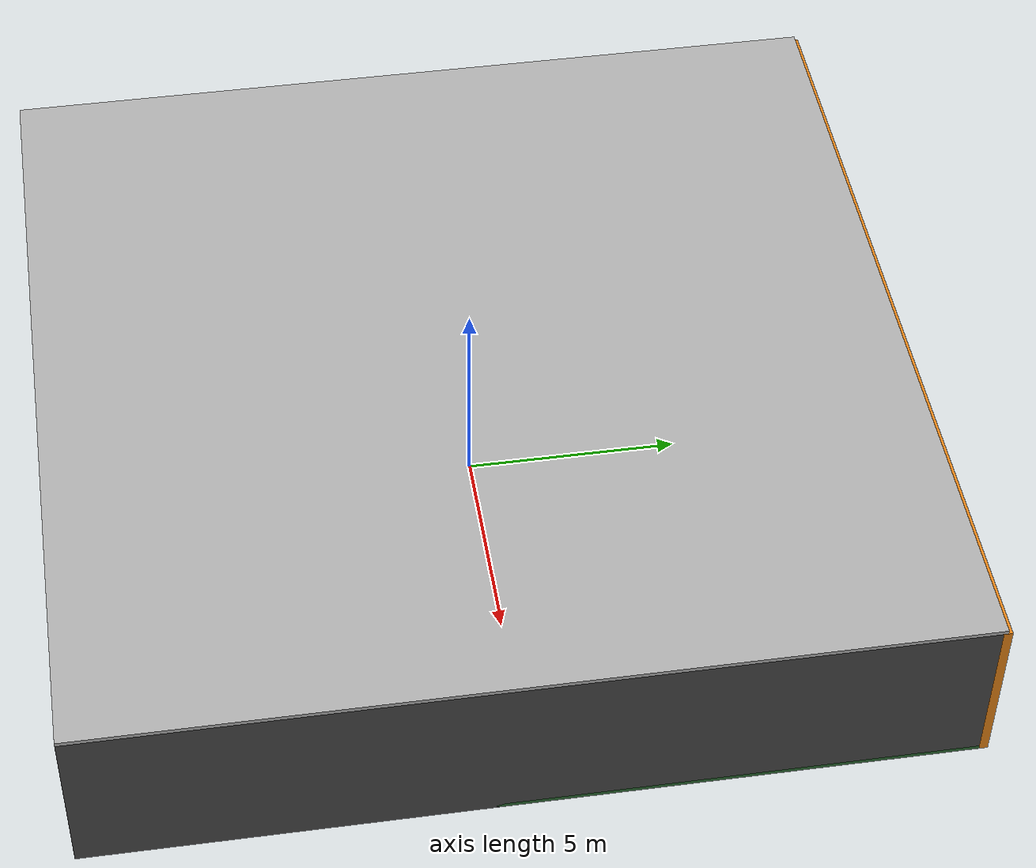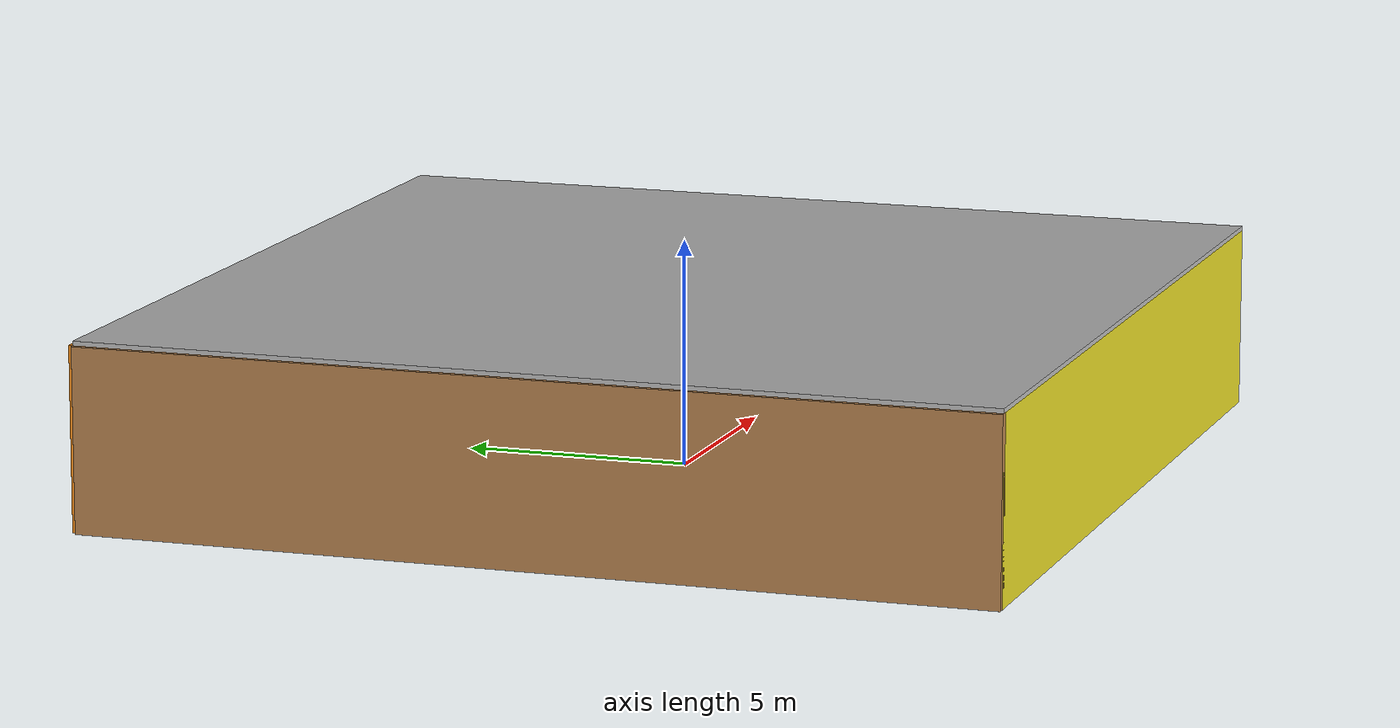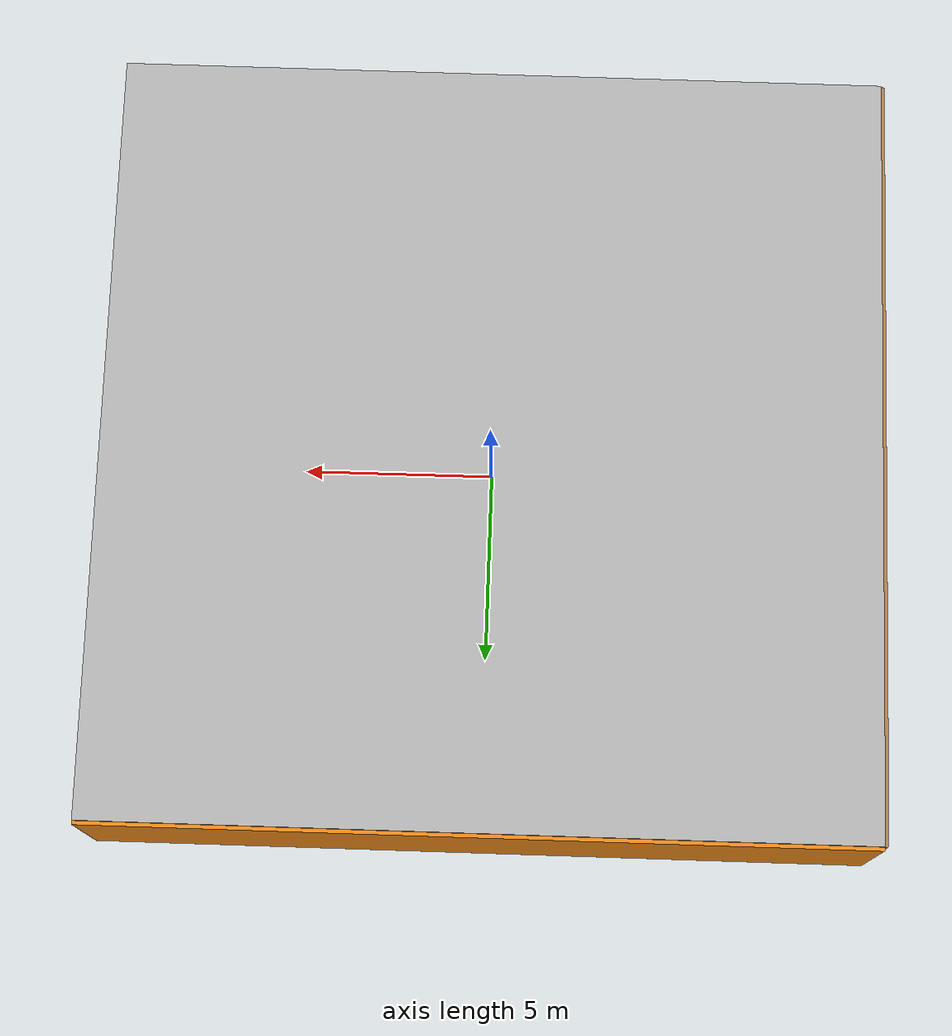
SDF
<sdf version="1.4">
 <world name="default">
  <physics type="ode">
   <max_step_size>0.001</max_step_size>
   <real_time_factor>1</real_time_factor>
   <real_time_update_rate>1000</real_time_update_rate>
   <gravity>0 0 -9.8</gravity>
  </physics>
  <scene><ambient>0.4 0.4 0.4 1</ambient><background>0.7 0.7 0.7 1</background><shadows>1</shadows></scene>
  <model name="Surrounding">
   <static>1</static>
   <link name="Ceiling">
    <collision name="Ceiling_Collision"><geometry><box><size>20 20 0.1</size></box></geometry></collision>
    <visual name="Ceiling_Visual">
     <geometry><box><size>20 20 0.1</size></box></geometry>
     <material>
      <script><uri>file://media/materials/scripts/gazebo.material</uri><name>Gazebo/LightOn</name></script>
     </material>
    </visual>
    <pose>0 0 4.05 0 0 0</pose>
   </link>
   <link name="Wall_South">
    <collision name="Wall_South_Collision">
     <geometry><box><size>20 0 4</size></box></geometry>
     <pose>0 0 2 0 -0 0</pose>
    </collision>
    <visual name="Wall_South_Visual">
     <pose>0 0 2 0 -0 0</pose>
     <geometry><box><size>20 0 4</size></box></geometry>
     <material>
      <script><uri>file://media/materials/scripts/gazebo.material</uri><name>Gazebo/Yellow</name></script>
     </material>
    </visual>
    <velocity_decay><linear>0</linear><angular>0</angular></velocity_decay>
    <pose>0 -10 0 0 -0 0</pose>
   </link>
   <link name="Wall_East">
    <collision name="Wall_21_Collision">
     <geometry><box><size>20 0 4</size></box></geometry>
     <pose>0 0 2 0 -0 0</pose>
    </collision>
    <visual name="Wall_21_Visual">
     <pose>0 0 2 0 -0 0</pose>
     <geometry><box><size>20 0 4</size></box></geometry>
     <material>
      <script><uri>file://media/materials/scripts/gazebo.material</uri><name>Gazebo/Road</name></script>
     </material>
    </visual>
    <velocity_decay><linear>0</linear><angular>0</angular></velocity_decay>
    <pose>10 0 0 0 -0 1.5708</pose>
   </link>
   <link name="Wall_North">
    <collision name="Wall_22_Collision">
     <geometry><box><size>20 0.2 4</size></box></geometry>
     <pose>0 0 2 0 -0 0</pose>
    </collision>
    <visual name="Wall_22_Visual">
     <pose>0 0 2 0 -0 0</pose>
     <geometry><box><size>20 0.2 4</size></box></geometry>
     <material>
      <script><uri>file://media/materials/scripts/gazebo.material</uri><name>Gazebo/Orange</name></script>
     </material>
    </visual>
    <velocity_decay><linear>0</linear><angular>0</angular></velocity_decay>
    <pose>0 10 0 0 -0 0</pose>
   </link>
   <link name="Wall_West">
    <collision name="Wall_23_Collision">
     <geometry><box><size>20 0.2 4</size></box></geometry>
     <pose>0 0 2 0 -0 0</pose>
    </collision>
    <visual name="Wall_23_Visual">
     <pose>0 0 2 0 -0 0</pose>
     <geometry><box><size>20 0.2 4</size></box></geometry>
     <material>
      <script><uri>file://media/materials/scripts/gazebo.material</uri><name>Gazebo/Wood</name></script>
     </material>
    </visual>
    <velocity_decay><linear>0</linear><angular>0</angular></velocity_decay>
    <pose>-10 0 0 0 0 -1.5708</pose>
   </link>
   <link name="Ground_link">
    <collision name="collision">
     <pose>0 0 .05 0 -0 0</pose>
     <geometry><box><size>20 20 0.1</size></box></geometry>
    </collision>
    <visual name="visual">
     <pose>0 0 .05 0 -0 0</pose>
     <geometry><box><size>20 20 0.1</size></box></geometry>
     <material>
      <script><uri>file://media/materials/scripts/gazebo.material</uri><name>Gazebo/GreenTransparent</name></script>
     </material>
    </visual>
   </link>
   <static>1</static>
  </model>
  <spherical_coordinates>
   <surface_model>EARTH_WGS84</surface_model>
   <latitude_deg>0</latitude_deg>
   <longitude_deg>0</longitude_deg>
   <elevation>0</elevation>
   <heading_deg>0</heading_deg>
  </spherical_coordinates>
  <light name="lightball_0" type="diffuse">
   <diffuse>0.8 0.8 0.8 1</diffuse>
   <specular>0.2 0.2 0.2 1</specular>
   <attenuation>
    <range>100</range>
    <constant>0.7</constant>
    <linear>0.01</linear>
    <quadratic>0.001</quadratic>
   </attenuation>
   <direction>-0.5 0.1 -0.9</direction>
   <pose>2.23383146342 -1.33220661013 3.21144415063 0 0 0</pose>
  </light>
  <light name="lightball_1" type="diffuse">
   <diffuse>0.8 0.8 0.8 1</diffuse>
   <specular>0.2 0.2 0.2 1</specular>
   <attenuation>
    <range>100</range>
    <constant>0.7</constant>
    <linear>0.01</linear>
    <quadratic>0.001</quadratic>
   </attenuation>
   <direction>-0.5 0.1 -0.9</direction>
   <pose>1.59335663553 -5.99604015182 0.927211901004 0 0 0</pose>
  </light>
  <light name="lightball_2" type="diffuse">
   <diffuse>0.8 0.8 0.8 1</diffuse>
   <specular>0.2 0.2 0.2 1</specular>
   <attenuation>
    <range>100</range>
    <constant>0.7</constant>
    <linear>0.01</linear>
    <quadratic>0.001</quadratic>
   </attenuation>
   <direction>-0.5 0.1 -0.9</direction>
   <pose>0.0529831667512 -8.11879903944 2.88949539488 0 0 0</pose>
  </light>
  <light name="lightball_3" type="diffuse">
   <diffuse>0.8 0.8 0.8 1</diffuse>
   <specular>0.2 0.2 0.2 1</specular>
   <attenuation>
    <range>100</range>
    <constant>0.7</constant>
    <linear>0.01</linear>
    <quadratic>0.001</quadratic>
   </attenuation>
   <direction>-0.5 0.1 -0.9</direction>
   <pose>-5.16620551879 2.13831908301 3.03936985114 0 0 0</pose>
  </light>
  <light name="lightball_4" type="diffuse">
   <diffuse>0.8 0.8 0.8 1</diffuse>
   <specular>0.2 0.2 0.2 1</specular>
   <attenuation>
    <range>100</range>
    <constant>0.7</constant>
    <linear>0.01</linear>
    <quadratic>0.001</quadratic>
   </attenuation>
   <direction>-0.5 0.1 -0.9</direction>
   <pose>0.509248618805 -6.55993874361 2.70902287484 0 0 0</pose>
  </light>
  <light name="lightball_5" type="diffuse">
   <diffuse>0.8 0.8 0.8 1</diffuse>
   <specular>0.2 0.2 0.2 1</specular>
   <attenuation>
    <range>100</range>
    <constant>0.7</constant>
    <linear>0.01</linear>
    <quadratic>0.001</quadratic>
   </attenuation>
   <direction>-0.5 0.1 -0.9</direction>
   <pose>9.89199027159 5.15220656049 3.25350316024 0 0 0</pose>
  </light>
  <light name="lightball_6" type="diffuse">
   <diffuse>0.8 0.8 0.8 1</diffuse>
   <specular>0.2 0.2 0.2 1</specular>
   <attenuation>
    <range>100</range>
    <constant>0.7</constant>
    <linear>0.01</linear>
    <quadratic>0.001</quadratic>
   </attenuation>
   <direction>-0.5 0.1 -0.9</direction>
   <pose>6.23900978191 1.71576219357 2.57675120576 0 0 0</pose>
  </light>
  <light name="lightball_7" type="diffuse">
   <diffuse>0.8 0.8 0.8 1</diffuse>
   <specular>0.2 0.2 0.2 1</specular>
   <attenuation>
    <range>100</range>
    <constant>0.7</constant>
    <linear>0.01</linear>
    <quadratic>0.001</quadratic>
   </attenuation>
   <direction>-0.5 0.1 -0.9</direction>
   <pose>0.0562428156262 -0.869872928589 1.22906998652 0 0 0</pose>
  </light>
  <include>
   <uri>model://construction_cone</uri>
   <pose>-7.32073569617 -5.04421551854 0 0 0 2.82309720193</pose>
  </include>
  <include>
   <uri>model://textured_shapes</uri>
   <pose>-1.97116802892 1.64901863683 0 0 0 0.177956164843</pose>
  </include>
  <include><uri>model://cabinet</uri><pose>3.8534153439 -2.15646369196 0 0 0 2.72736403621</pose></include>
  <include>
   <uri>model://construction_cone</uri>
   <pose>7.37757970793 -8.5367935131 0 0 0 0.137500498345</pose>
  </include>
 </world>
</sdf>

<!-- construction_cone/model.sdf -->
<sdf version="1.5">
  <model name="Construction Cone">
    <link name="link">
      <collision name="collision">
        <geometry>
          <mesh>
            <scale>10 10 10</scale>
            <uri>file://isr-testbed/construction_cone/meshes/construction_cone.dae</uri>
          </mesh>
        </geometry>
      </collision>
      <visual name="visual">
        <geometry>
          <mesh>
            <scale>10 10 10</scale>
            <uri>file://isr-testbed/construction_cone/meshes/construction_cone.dae</uri>
          </mesh>
        </geometry>
      </visual>
    </link>
  </model>
</sdf>

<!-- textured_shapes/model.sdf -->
<sdf version="1.6">
  <model name="textured_shapes">
    <pose>0 0 0.5 0 0 0</pose>
    <link name="box">
      <pose>0 -1.5 0 0 0 0</pose>
      <collision name="collision">
        <geometry>
          <box>
            <size>1 1 1</size>
          </box>
        </geometry>
      </collision>
      <visual name="visual">
        <geometry>
          <box>
            <size>1 1 1</size>
          </box>
        </geometry>
        <material>
          <script>
            <uri>model://../model_source/models/textured_shapes/materials/scripts</uri>
            <uri>model://../model_source/models/textured_shapes/materials/textures</uri>
            <name>TexturedShape/Squares</name>
          </script>
        </material>
      </visual>
    </link>
    <link name="sphere">
      <collision name="collision">
        <geometry>
          <sphere>
            <radius>0.5</radius>
          </sphere>
        </geometry>
      </collision>
      <visual name="visual">
        <geometry>
          <sphere>
            <radius>0.5</radius>
          </sphere>
        </geometry>
        <material>
          <script>
            <uri>model://../model_source/models/textured_shapes/materials/scripts</uri>
            <uri>model://../model_source/models/textured_shapes/materials/textures</uri>
            <name>TexturedShape/Squares</name>
          </script>
        </material>
      </visual>
    </link>
    <link name="cylinder">
      <pose>0 1.5 0 0 0 0</pose>
      <collision name="collision">
        <geometry>
          <cylinder>
            <radius>0.5</radius>
            <length>1</length>
          </cylinder>
        </geometry>
      </collision>
      <visual name="visual">
        <geometry>
          <cylinder>
            <radius>0.5</radius>
            <length>1</length>
          </cylinder>
        </geometry>
        <material>
          <script>
            <uri>model://../model_source/models/textured_shapes/materials/scripts</uri>
            <uri>model://../model_source/models/textured_shapes/materials/textures</uri>
            <name>TexturedShape/Squares</name>
          </script>
        </material>
      </visual>
    </link>
  </model>
</sdf>

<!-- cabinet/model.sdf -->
<sdf version="1.5">
  <model name="cabinet">
    <static>true</static>
    <link name="cabinet_bottom_plate">
      <inertial>
        <pose>0 0 -1 0 0 0</pose>
        <inertia>
          <ixx>2.050000</ixx>
          <ixy>0</ixy>
          <ixz>0</ixz>
          <iyy>2.050000</iyy>
          <iyz>0</iyz>
          <izz>2.050000</izz>
        </inertia>
        <mass>25.000000</mass>
      </inertial>
      <collision name="cabinet_bottom_plate_geom">
        <pose>0 0 0.010000 0 0 0</pose>
        <geometry>
          <box>
            <size>0.450000 0.450000 0.020000</size>
          </box>
        </geometry>
      </collision>
      <visual name="cabinet_bottom_plate_geom_visual">
        <pose>0 0 0.010000 0 0 0</pose>
        <geometry>
          <box>
            <size>0.450000 0.450000 0.020000</size>
          </box>
        </geometry>
        <material>
          <script>
            <uri>model://media/materials/scripts/gazebo.material</uri>
            <name>Gazebo/Wood</name>
          </script>
        </material>
      </visual>
      <collision name="cabinet_bottom_plate_geom_cabinet_back_plate">
        <pose>0.235000 0 0.510000 0 0 0</pose>
        <geometry>
          <box>
            <size>0.020000 0.450000 1.020000</size>
          </box>
        </geometry>
      </collision>
      <visual name="cabinet_bottom_plate_geom_cabinet_back_plate_visual">
        <pose>0.235000 0 0.510000 0 0 0</pose>
        <geometry>
          <box>
            <size>0.020000 0.450000 1.020000</size>
          </box>
        </geometry>
        <material>
          <script>
            <uri>model://media/materials/scripts/gazebo.material</uri>
            <name>Gazebo/Wood</name>
          </script>
        </material>
      </visual>
      <collision name="cabinet_bottom_plate_geom_cabinet_left_plate">
        <pose>0 0.235000 0.510000 0 0 0</pose>
        <geometry>
          <box>
            <size>0.450000 0.020000 1.020000</size>
          </box>
        </geometry>
      </collision>
      <visual name="cabinet_bottom_plate_geom_cabinet_left_plate_visual">
        <pose>0 0.235000 0.510000 0 0 0</pose>
        <geometry>
          <box>
            <size>0.450000 0.020000 1.020000</size>
          </box>
        </geometry>
        <material>
          <script>
            <uri>model://media/materials/scripts/gazebo.material</uri>
            <name>Gazebo/Wood</name>
          </script>
        </material>
      </visual>
      <collision name="cabinet_bottom_plate_geom_cabinet_middle_plate">
        <pose>0 0 0.510000 0 0 0</pose>
        <geometry>
          <box>
            <size>0.450000 0.450000 0.020000</size>
          </box>
        </geometry>
      </collision>
      <visual name="cabinet_bottom_plate_geom_cabinet_middle_plate_visual">
        <pose>0 0 0.510000 0 0 0</pose>
        <geometry>
          <box>
            <size>0.450000 0.450000 0.020000</size>
          </box>
        </geometry>
        <material>
          <script>
            <uri>model://media/materials/scripts/gazebo.material</uri>
            <name>Gazebo/Wood</name>
          </script>
        </material>
      </visual>
      <collision name="cabinet_bottom_plate_geom_cabinet_right_plate">
        <pose>0 -0.235000 0.510000 0 0 0</pose>
        <geometry>
          <box>
            <size>0.450000 0.020000 1.020000</size>
          </box>
        </geometry>
      </collision>
      <visual name="cabinet_bottom_plate_geom_cabinet_right_plate_visual">
        <pose>0 -0.235000 0.510000 0 0 0</pose>
        <geometry>
          <box>
            <size>0.450000 0.020000 1.020000</size>
          </box>
        </geometry>
        <material>
          <script>
            <uri>model://media/materials/scripts/gazebo.material</uri>
            <name>Gazebo/Wood</name>
          </script>
        </material>
      </visual>
      <collision name="cabinet_bottom_plate_geom_cabinet_top_plate">
        <pose>0 0 1.010000 0 0 0</pose>
        <geometry>
          <box>
            <size>0.450000 0.450000 0.020000</size>
          </box>
        </geometry>
      </collision>
      <visual name="cabinet_bottom_plate_geom_cabinet_top_plate_visual">
        <pose>0 0 1.010000 0 0 0</pose>
        <geometry>
          <box>
            <size>0.450000 0.450000 0.020000</size>
          </box>
        </geometry>
        <material>
          <script>
            <uri>model://media/materials/scripts/gazebo.material</uri>
            <name>Gazebo/Wood</name>
          </script>
        </material>
      </visual>
    </link>
  </model>
</sdf>
